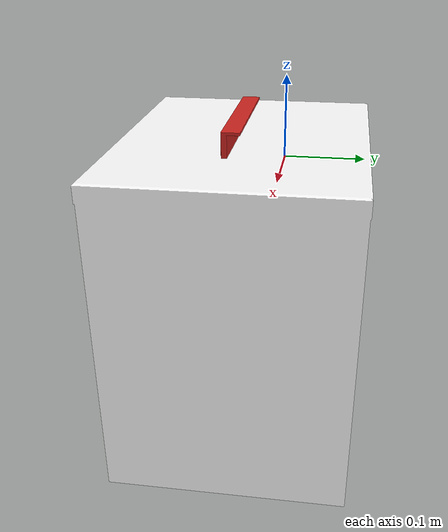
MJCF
<mujoco model="Drawer_454fdaaf">
  <compiler autolimits="true" boundmass="0.01" angle="radian"/>
  <default>
    <default class="/">
      <default class="__VISUAL_MJT__">
        <geom contype="0" conaffinity="0" group="0"/>
      </default>
      <default class="__STRUCTURAL_MJT__">
        <geom contype="8" conaffinity="15" group="4" friction="0.90000000000000002 0.90000000000000002 0.001" solref="0.025000000000000001 1" solimp="0.998 0.998 0.001"/>
      </default>
      <default class="__DYNAMIC_MJT__">
        <geom contype="1" conaffinity="15" group="4" friction="0.90000000000000002 0.90000000000000002 0.001" solref="0.025000000000000001 1" solimp="0.998 0.998 0.001"/>
      </default>
    </default>
  </default>
  <asset>
    <material name="material_WhiteWoodClean" class="/" specular="0.5" shininess="0.5" rgba="1 1 1 1"/>
    <mesh name="Drawer_454fdaaf_Mesh_01_335bbe0b" class="/" file="Drawer_454fdaaf_Mesh_01_335bbe0b/Drawer_454fdaaf_Mesh_01_335bbe0b.obj" scale="1 1 1" inertia="legacy"/>
    <texture name="HammeredMetal_AlbedoTransparency_2" type="2d" file="HammeredMetal_AlbedoTransparency.png"/>
    <material name="material_HammeredMetal_AlbedoTransparency_2" class="/" texture="HammeredMetal_AlbedoTransparency_2" specular="0.5" shininess="0.5" rgba="1 0.93407709999999999 0.81617649999999997 1"/>
    <mesh name="Drawer_454fdaaf_handle_3_178mm_01_7472c68a" class="/" file="Drawer_454fdaaf_handle_3_178mm_01_7472c68a/Drawer_454fdaaf_handle_3_178mm_01_7472c68a.obj" scale="1 1 1" inertia="legacy"/>
  </asset>
  <worldbody>
    <body name="Drawer_454fdaaf">
      <body name="Drawer_454fdaaf_Mesh_01_335bbe0b" pos="0.097000047564506531 -0.10519999265670776 0.00040005147457122803" quat="1 0 0 0">
        <geom name="Drawer_454fdaaf_Mesh_01_335bbe0b" class="__VISUAL_MJT__" type="mesh" material="material_WhiteWoodClean" mesh="Drawer_454fdaaf_Mesh_01_335bbe0b"/>
        <joint name="Drawer_454fdaaf_joint" class="/" type="slide" pos="-0.09700002521276474 0.10519999265670776 -0.00040005147457122803" axis="0 0 1" stiffness="0" range="0 0.32300000000000001" damping="0.10000000000000001" frictionloss="0"/>
        <site name="Drawer_454fdaaf_Mesh_01_335bbe0b_Receptacle_0" class="/" type="box" rgba="1 0 0 1" size="0.19348655641078949 0.13571210205554962 0.17335198819637299" pos="-0.096888184547424316 0.053751349449157715 -0.17807187139987946" quat="0 1 0 0"/>
        <geom name="Drawer_454fdaaf_Mesh_01_335bbe0b_PrimitiveCollider_0" class="__DYNAMIC_MJT__" type="box" size="0.20489327609539032 0.15787255764007568 0.01138788741081953" rgba="0 1 0 1" pos="-0.097000040113925934 0.053907871246337891 0.01100088469684124" quat="0 1 0 0"/>
        <geom name="Drawer_454fdaaf_Mesh_01_335bbe0b_PrimitiveCollider_1" class="__DYNAMIC_MJT__" type="box" size="0.20489327609539032 0.14827319979667664 0.0073814410716295242" rgba="0 1 0 1" pos="-0.097000055015087128 0.045844435691833496 -0.3602624237537384" quat="0 1 0 0"/>
        <geom name="Drawer_454fdaaf_Mesh_01_335bbe0b_PrimitiveCollider_2" class="__DYNAMIC_MJT__" type="box" size="0.19288802146911621 0.14679805934429169 0.0063079707324504852" rgba="0 1 0 1" pos="-0.29469472169876099 0.047319591045379639 -0.1747736781835556" quat="0 0.70710678118654757 0 0.70710678118654757"/>
        <geom name="Drawer_454fdaaf_Mesh_01_335bbe0b_PrimitiveCollider_3" class="__DYNAMIC_MJT__" type="box" size="0.19288811087608337 0.14679805934429169 0.0063079739920794964" rgba="0 1 0 1" pos="0.10028824955224991 0.047319591045379639 -0.17477360367774963" quat="0 0.70710678118654757 0 0.70710678118654757"/>
        <geom name="Drawer_454fdaaf_Mesh_01_335bbe0b_PrimitiveCollider_4" class="__DYNAMIC_MJT__" type="box" size="0.1928880512714386 0.20283514261245728 0.01060603279620409" rgba="0 1 0 1" pos="-0.097619831562042236 -0.091924577951431274 -0.17477358877658844" quat="-0.49999994039536055 0.49999999999999822 0.50000005960463589 0.49999999999999822"/>
        <body name="Drawer_454fdaaf_handle_3_178mm_01_7472c68a" pos="-0.094999991357326508 0.042999982833862305 0.019999997690320015" quat="1 0 0 0">
          <geom name="Drawer_454fdaaf_handle_3_178mm_01_7472c68a" class="__VISUAL_MJT__" type="mesh" material="material_HammeredMetal_AlbedoTransparency_2" mesh="Drawer_454fdaaf_handle_3_178mm_01_7472c68a"/>
          <geom name="Drawer_454fdaaf_handle_3_178mm_01_7472c68a_PrimitiveCollider_0" class="__DYNAMIC_MJT__" type="box" size="0.088752105832099915 0.0035549115855246782 0.016431532800197601" rgba="0 1 0 1" pos="1.9419132968323538e-09 0 0.016289951279759407" quat="0 1 0 0"/>
          <geom name="Drawer_454fdaaf_handle_3_178mm_01_7472c68a_PrimitiveCollider_1" class="__DYNAMIC_MJT__" type="box" size="0.088752105832099915 0.0077598136849701405 0.0019227261655032635" rgba="0 1 0 1" pos="3.6715022133648745e-09 0.011284947395324707 0.030798796564340591" quat="0 1 0 0"/>
        </body>
      </body>
    </body>
  </worldbody>
  <contact>
    <exclude name="//unnamed_contact_0" body1="Drawer_454fdaaf_Mesh_01_335bbe0b" body2="Drawer_454fdaaf_handle_3_178mm_01_7472c68a"/>
  </contact>
</mujoco>
